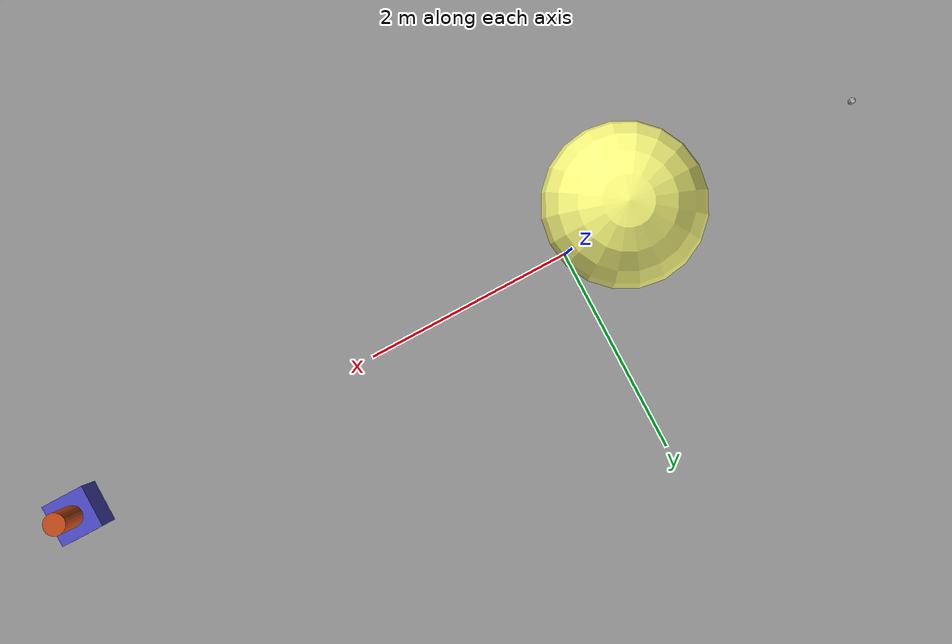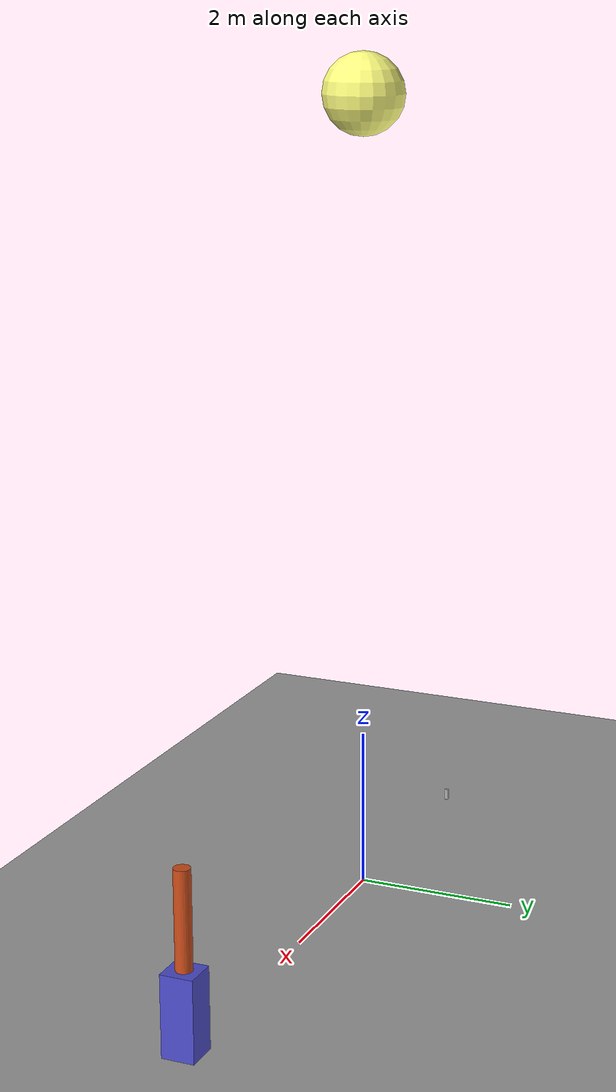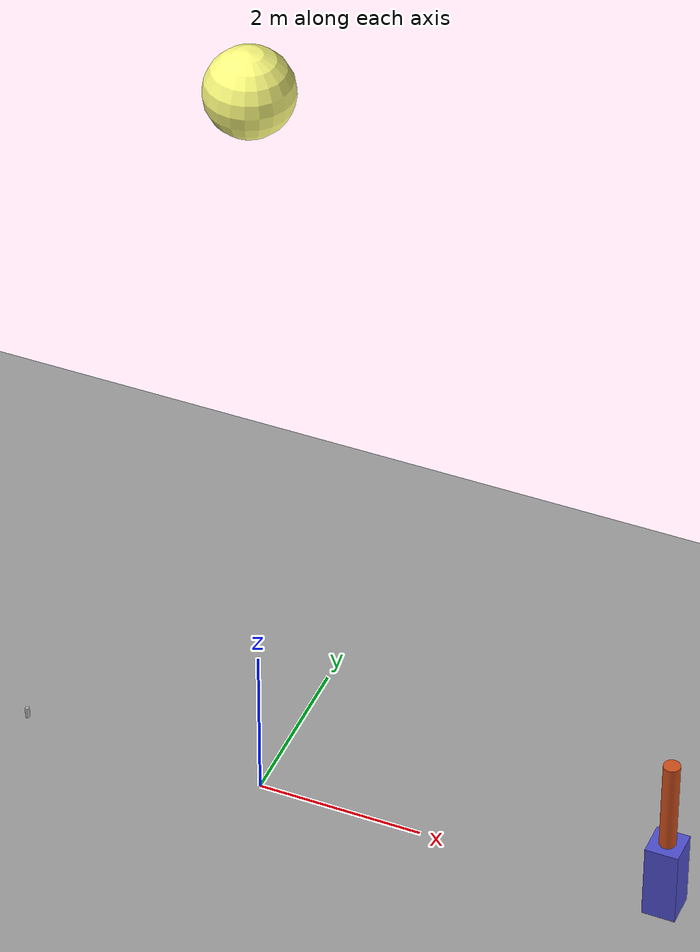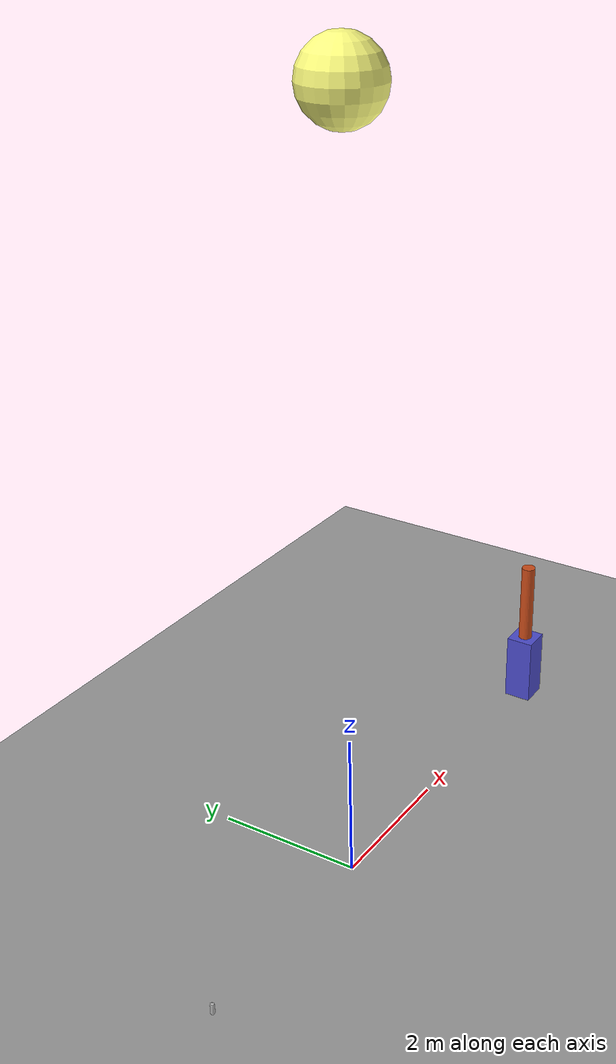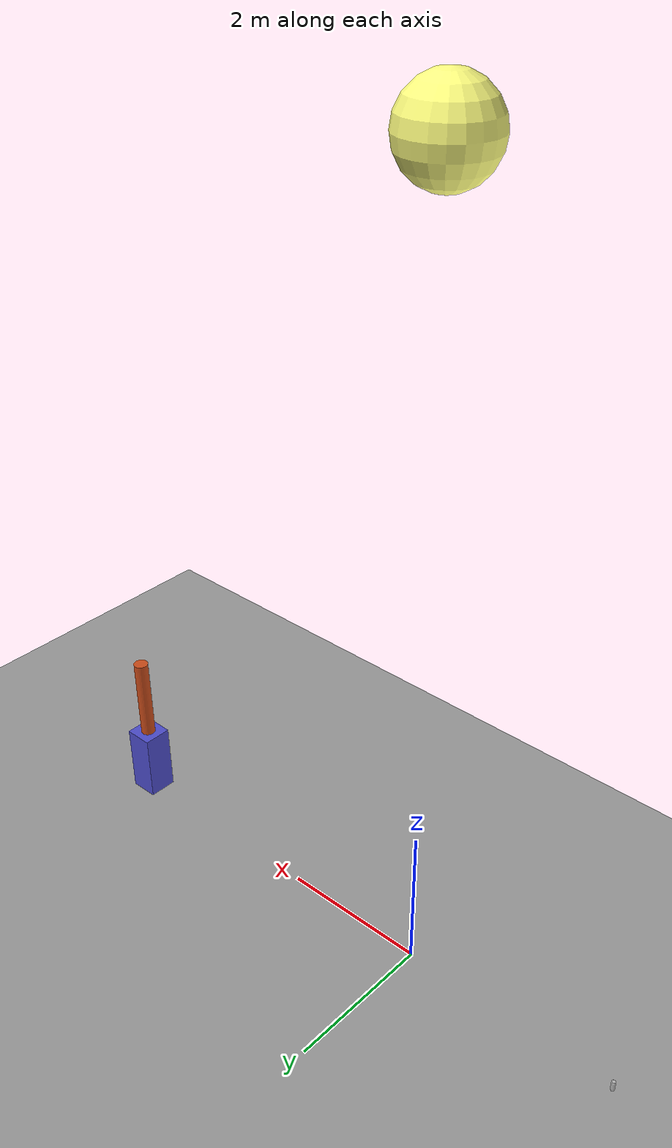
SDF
<?xml version="1.0" ?>
<sdf version="1.10">
  <world name="joints_and_include">

    <physics name="1ms" type="ignored">
      <max_step_size>0.001</max_step_size>
      <real_time_factor>1.0</real_time_factor>
    </physics>

    <plugin filename="gz-sim-physics-system"
            name="gz::sim::systems::Physics"/>
    <plugin filename="gz-sim-user-commands-system"
            name="gz::sim::systems::UserCommands"/>
    <plugin filename="gz-sim-scene-broadcaster-system"
            name="gz::sim::systems::SceneBroadcaster"/>

    <!-- Sun -->
    <model name="sun_visual">
      <static>true</static>
      <pose>0 0 10 0 0 0</pose>
      <link name="link">
        <visual name="visual">
          <geometry>
            <sphere><radius>0.5</radius></sphere>
          </geometry>
          <material>
            <ambient>1.0 1.0 0.5 1</ambient>
            <diffuse>1.0 1.0 0.5 1</diffuse>
            <specular>1.0 1.0 1.0 1</specular>
            <emissive>1.0 1.0 0.5 1</emissive>
          </material>
        </visual>
      </link>
    </model>

    <light type="directional" name="sun">
      <cast_shadows>true</cast_shadows>
      <pose>0 0 10 0 0 0</pose>
      <diffuse>0.9 0.9 0.9 1</diffuse>
      <specular>0.3 0.3 0.3 1</specular>
      <attenuation>
        <range>1000</range>
        <constant>0.9</constant>
        <linear>0.01</linear>
        <quadratic>0.001</quadratic>
      </attenuation>
      <direction>-0.5 0.1 -0.9</direction>
    </light>

    <!-- Ground Plane -->
    <model name="ground_plane">
      <static>true</static>
      <link name="link">
        <collision name="collision">
          <geometry>
            <plane><normal>0 0 1</normal></plane>
          </geometry>
        </collision>
        <visual name="visual">
          <geometry>
            <plane>
              <normal>0 0 1</normal>
              <size>100 100</size>
            </plane>
          </geometry>
          <material>
            <ambient>0.6 0.6 0.6 1</ambient>
            <diffuse>0.6 0.6 0.6 1</diffuse>
            <specular>0.1 0.1 0.1 1</specular>
          </material>
        </visual>
      </link>
    </model>

    <model name="simple_arm">
      <pose>5 0 0 0 0 0</pose>

      <!-- Link 1: Base — the fixed bottom part -->
      <link name="base_link">
        <pose>0 0 0.5 0 0 0</pose>
        <inertial>
          <mass>5.0</mass>
          <inertia>
            <ixx>0.1</ixx><ixy>0</ixy><ixz>0</ixz>
            <iyy>0.1</iyy><iyz>0</iyz>
            <izz>0.1</izz>
          </inertia>
        </inertial>
        <visual name="visual">
          <geometry>
            <box><size>0.4 0.4 1.0</size></box>
          </geometry>
          <material>
            <ambient>0.3 0.3 0.8 1</ambient>
            <diffuse>0.3 0.3 0.8 1</diffuse>
            <specular>0.1 0.1 0.3 1</specular>
          </material>
        </visual>
        <collision name="collision">
          <geometry>
            <box><size>0.4 0.4 1.0</size></box>
          </geometry>
        </collision>
      </link>

      <!-- Link 2: Arm — the part that rotates -->
      <link name="arm_link">
        <!--
          arm_link sits on top of base_link.
          base_link top = Z 0.5 + 0.5 = 1.0
          arm_link center = 1.0 + 0.6 = 1.6 (length=1.2, half=0.6)
        -->
        <pose>0 0 1.6 0 0 0</pose>
        <inertial>
          <mass>1.0</mass>
          <inertia>
            <ixx>0.02</ixx><ixy>0</ixy><ixz>0</ixz>
            <iyy>0.1</iyy><iyz>0</iyz>
            <izz>0.1</izz>
          </inertia>
        </inertial>
        <visual name="visual">
          <geometry>
            <cylinder>
              <radius>0.1</radius>
              <length>1.2</length>
            </cylinder>
          </geometry>
          <material>
            <ambient>0.8 0.3 0.1 1</ambient>
            <diffuse>0.8 0.3 0.1 1</diffuse>
            <specular>0.3 0.1 0.0 1</specular>
          </material>
        </visual>
        <collision name="collision">
          <geometry>
            <cylinder>
              <radius>0.1</radius>
              <length>1.2</length>
            </cylinder>
          </geometry>
        </collision>
      </link>

      <joint name="arm_joint" type="revolute">
        <!-- Joint pose is at the connection point, relative to child -->
        <pose relative_to="arm_link">0 0 -0.6 0 0 0</pose>
        <parent>base_link</parent>
        <child>arm_link</child>
        <axis>
          <!-- Rotation axis: Z = spins horizontally -->
          <xyz expressed_in="__model__">0 0 1</xyz>
          <limit>
            <lower>-3.1416</lower>  <!-- -180 degrees -->
            <upper>3.1416</upper>   <!--  180 degrees -->
          </limit>
        </axis>
      </joint>

      <!-- Fix the base to the world so it doesn't fall -->
      <joint name="base_to_world" type="fixed">
        <parent>world</parent>
        <child>base_link</child>
      </joint>

    </model>

    <include>
      <uri>https://fuel.gazebosim.org/1.0/OpenRobotics/models/Coke</uri>
      <name>coke_can</name>
      <pose>-3 0 0 0 0 0</pose>
    </include>

  </world>
</sdf>

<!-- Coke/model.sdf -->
<sdf version="1.6">
  <model name='Coke'>
    <static>true</static>
    <link name="body">
      <pose>0 0 0 0 0 0</pose>

        <visual name="visual">
          <geometry>
            <mesh><uri>model://Coke/meshes/coke.obj</uri></mesh>
          </geometry>
        </visual>

        <collision name="collision">
          <geometry>
            <mesh><uri>model://Coke/meshes/coke.obj</uri></mesh>
          </geometry>
        </collision>

        <!-- TODO: Replace with accurate values of mass and inertia -->
        <inertial>
          <mass>1.0</mass>
          <inertia>
            <ixx>0.003366666666666667</ixx>
            <iyy>0.0008666666666666667</iyy>
            <izz>0.0041666666666666675</izz>
          </inertia>
        </inertial>

    </link>

  </model>
</sdf>
